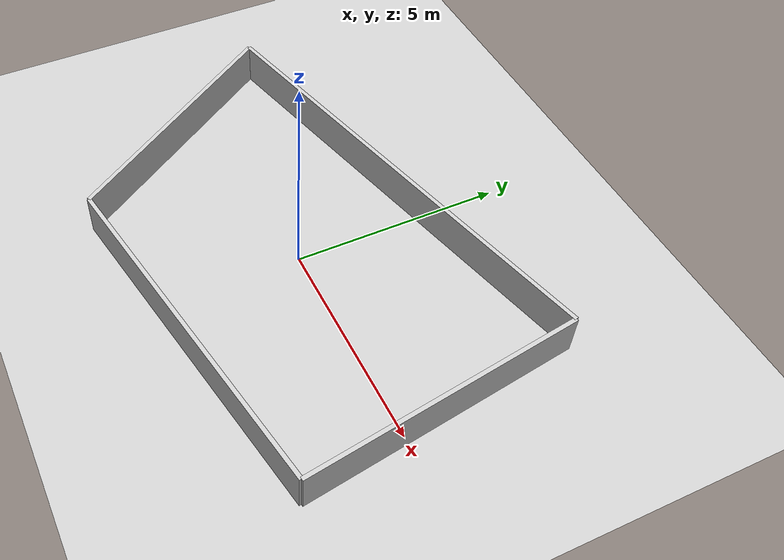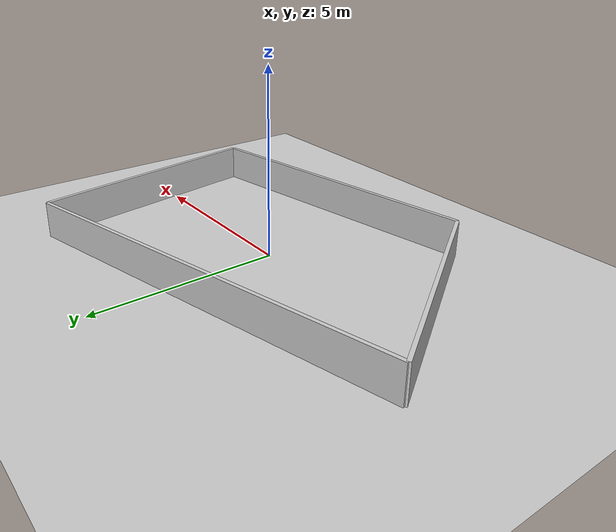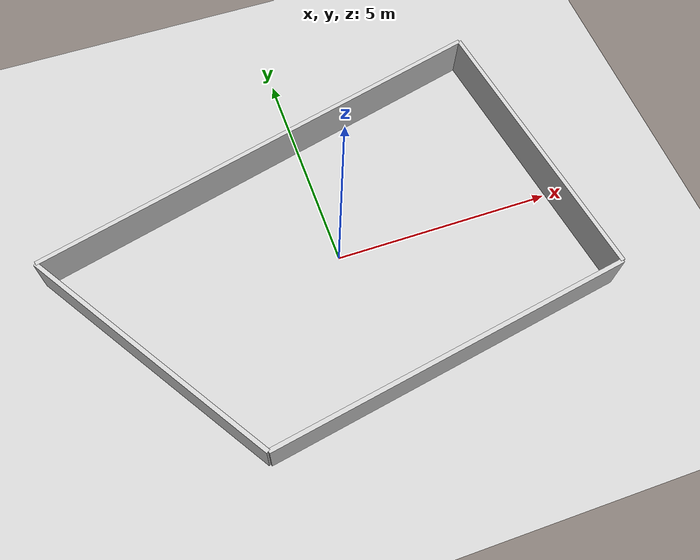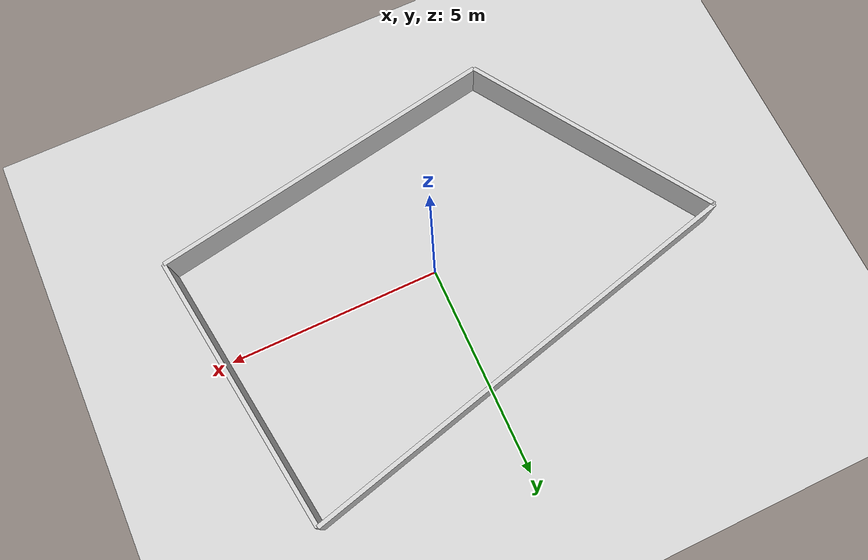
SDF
<sdf version="1.7">
 <world name="building_editor_world">
  <physics name="1ms" type="ignored">
   <max_step_size>0.001</max_step_size>
   <real_time_factor>1.0</real_time_factor>
  </physics>
  <plugin filename="gz-sim-physics-system" name="gz::sim::systems::Physics"/>
  <plugin filename="gz-sim-scene-broadcaster-system" name="gz::sim::systems::SceneBroadcaster"/>
  <plugin filename="gz-sim-user-commands-system" name="gz::sim::systems::UserCommands"/>
  <plugin filename="gz-sim-sensors-system" name="gz::sim::systems::Sensors">
   <render_engine>ogre2</render_engine>
  </plugin>
  <light type="directional" name="sun">
   <pose>0 0 10 0 0 0</pose>
   <diffuse>0.8 0.8 0.8 1</diffuse>
   <specular>0.2 0.2 0.2 1</specular>
   <attenuation>
    <range>1000</range>
    <constant>0.9</constant>
    <linear>0.01</linear>
    <quadratic>0.001</quadratic>
   </attenuation>
   <direction>-0.5 0.1 -0.9</direction>
  </light>
  <model name="ground_plane">
   <static>true</static>
   <link name="link">
    <collision name="collision">
     <geometry><plane><normal>0 0 1</normal><size>100 100</size></plane></geometry>
    </collision>
    <visual name="visual">
     <geometry><plane><normal>0 0 1</normal><size>100 100</size></plane></geometry>
     <material><ambient>0.8 0.8 0.8 1</ambient><diffuse>0.8 0.8 0.8 1</diffuse></material>
    </visual>
   </link>
  </model>
  <model name="wall_0">
   <static>true</static>
   <pose>-0.8800 2.8100 0.5000 0 0 0.244979</pose>
   <link name="link">
    <collision name="collision"><geometry><box><size>11.1324 0.1000 1.0000</size></box></geometry></collision>
    <visual name="visual">
     <geometry><box><size>11.1324 0.1000 1.0000</size></box></geometry>
     <material><ambient>0.8 0.8 0.8 1</ambient><diffuse>0.8 0.8 0.8 1</diffuse></material>
    </visual>
   </link>
  </model>
  <model name="wall_1">
   <static>true</static>
   <pose>4.9900 0.8600 0.5000 0 0 -1.429324</pose>
   <link name="link">
    <collision name="collision"><geometry><box><size>6.6666 0.1000 1.0000</size></box></geometry></collision>
    <visual name="visual">
     <geometry><box><size>6.6666 0.1000 1.0000</size></box></geometry>
     <material><ambient>0.8 0.8 0.8 1</ambient><diffuse>0.8 0.8 0.8 1</diffuse></material>
    </visual>
   </link>
  </model>
  <model name="wall_2">
   <static>true</static>
   <pose>1.3249 -3.1700 0.5000 0 0 -2.966865</pose>
   <link name="link">
    <collision name="collision"><geometry><box><size>8.3980 0.1000 1.0000</size></box></geometry></collision>
    <visual name="visual">
     <geometry><box><size>8.3980 0.1000 1.0000</size></box></geometry>
     <material><ambient>0.8 0.8 0.8 1</ambient><diffuse>0.8 0.8 0.8 1</diffuse></material>
    </visual>
   </link>
  </model>
  <model name="wall_3">
   <static>true</static>
   <pose>-4.5451 -1.2200 0.5000 0 0 2.145318</pose>
   <link name="link">
    <collision name="collision"><geometry><box><size>6.3850 0.1000 1.0000</size></box></geometry></collision>
    <visual name="visual">
     <geometry><box><size>6.3850 0.1000 1.0000</size></box></geometry>
     <material><ambient>0.8 0.8 0.8 1</ambient><diffuse>0.8 0.8 0.8 1</diffuse></material>
    </visual>
   </link>
  </model>
  <model name="spawn"><static>true</static><pose>-1.1183 -2.3441 0 0 0 1.588250</pose></model>
 </world>
</sdf>
